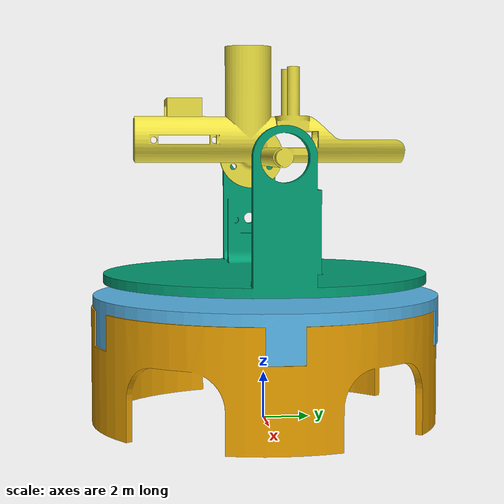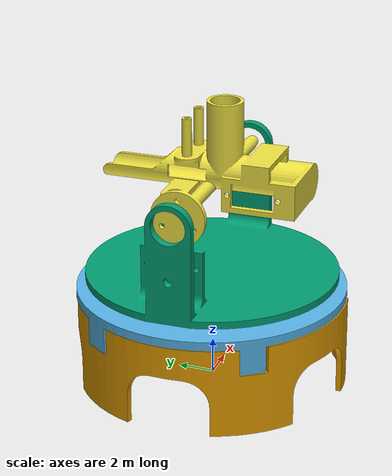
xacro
<?xml version="1.0"?>
<robot xmlns:xacro="http://www.ros.org/wiki/xacro" name="turret">
	<link name="base_link">
		<visual>
			<origin xyz='-1.02426 0.023517 -0.004124' rpy='0 0 0'/>
			<geometry>
				<mesh filename="package://my_robot_description/meshes/bottombase.stl"/>
			</geometry>
		</visual>
		<collision>
			<origin xyz='-1.02426 0.023517 -0.004124' rpy='0 0 0'/>
			<geometry>
				<mesh filename="package://my_robot_description/meshes/bottombase.stl"/>
			</geometry>
		</collision>
		<inertial>
  			<mass value="1.0"/>
  			<origin xyz="0 0 0"/>
  			<inertia
    			ixx="0.1" ixy="0" ixz="0"
    			iyy="0.1" iyz="0"
    			izz="0.1"/>
		</inertial>
	</link>

	<link name="base_top">
		<visual>
			<origin xyz='-0.379516 0.107647 5.09452' rpy='0 0 0.2'/>
			<geometry>
				<mesh filename="package://my_robot_description/meshes/basetop.stl"/>
			</geometry>
		</visual>
		<collision>
			<origin xyz='-0.379516 0.107647 5.09452' rpy='0 0 0.2'/>
			<geometry>
				<mesh filename="package://my_robot_description/meshes/basetop.stl"/>
			</geometry>
		</collision>
		<inertial>
  			<mass value="1.0"/>
  			<origin xyz="0 0 0"/>
  			<inertia
    			ixx="0.1" ixy="0" ixz="0"
    			iyy="0.1" iyz="0"
    			izz="0.1"/>
		</inertial>
	</link>

	<joint name='base_to_top' type='fixed'>
		<parent link='base_link'/>
		<child link='base_top'/>
		<origin xyz='0 0 0' rpy='0 0 0'/>
	</joint>

	<link name="rotating_support">
		<visual>
			<origin xyz='0 0 0' rpy='0 0 0'/>
			<geometry>
				<mesh filename="package://my_robot_description/meshes/rotatingsupport.stl"/>
			</geometry>
		</visual>
		<collision>
			<origin xyz='0 0 0' rpy='0 0 0'/>
			<geometry>
				<mesh filename="package://my_robot_description/meshes/rotatingsupport.stl"/>
			</geometry>
		</collision>
		<inertial>
  			<mass value="1.0"/>
  			<origin xyz="0 0 0"/>
  			<inertia
    			ixx="0.1" ixy="0" ixz="0"
    			iyy="0.1" iyz="0"
    			izz="0.1"/>
		</inertial>
	</link>

	<link name="barrel">
        <visual>
			<origin xyz='0 0 0' rpy='0 0 0'/>
            <geometry>
                <mesh filename="package://my_robot_description/meshes/barrel.stl"/>
            </geometry>
        </visual>
		<collision>
			<origin xyz='0 0 0' rpy='0 0 0'/>
            <geometry>
                <mesh filename="package://my_robot_description/meshes/barrel.stl"/>
            </geometry>
        </collision>
		<inertial>
  			<mass value="1.0"/>
  			<origin xyz="0 0 0"/>
  			<inertia
    			ixx="0.1" ixy="0" ixz="0"
    			iyy="0.1" iyz="0"
    			izz="0.1"/>
		</inertial>
    </link>

	<joint name='joint1' type='revolute'>
		<parent link='base_top'/>
		<child link='rotating_support'/>
		<origin xyz='0.021961 0.047853 5.74467'/>
		<axis xyz='0 0 1'/>
		<limit lower='-1.5708' upper='1.5708' effort='10' velocity='1'/>
	</joint>

	<joint name='joint2' type='revolute'>
		<parent link='rotating_support'/>
		<child link='barrel'/>
		<origin xyz='6.9 -0.025264 5.69999'/>
		<axis xyz='1 0 0'/>
		<limit lower='-1.5708' upper='1.5708' effort='10' velocity='1'/>
	</joint>

	<ros2_control name='GazeboSystem' type='system'>
		<hardware>
			<plugin>gz_ros2_control/GazeboSimSystem</plugin>
		</hardware>

		<joint name='joint1'>
			<command_interface name='position'/>
			<state_interface name='position'/>
			<state_interface name='velocity'/>
		</joint>

		<joint name='joint2'>
			<command_interface name='position'/>
			<state_interface name='position'/>
			<state_interface name='velocity'/>
		</joint>
	</ros2_control>

	<gazebo reference="base_link">
  		<static>true</static>
	</gazebo>

	<gazebo>
  		<plugin filename="gz_ros2_control-system"
          	name="gz_ros2_control::GazeboSimROS2ControlPlugin">
    		<parameters>$(find my_robot_description)/config/controller.yaml</parameters>
  		</plugin>
	</gazebo>

</robot>
